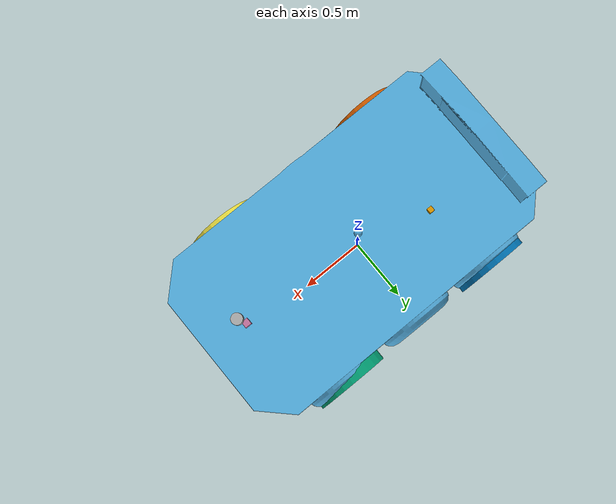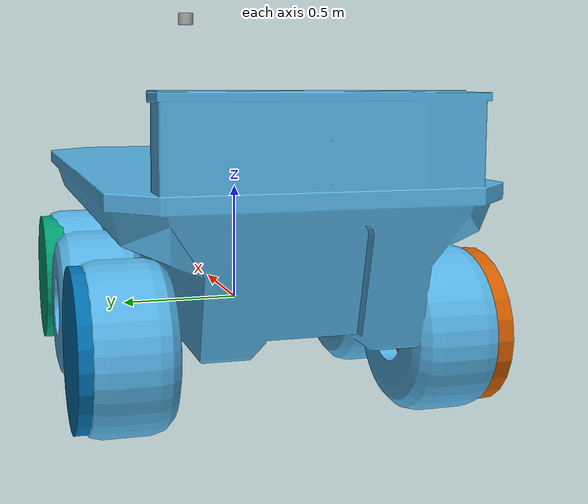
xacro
<?xml version="1.0"?>
<robot name="mutt_robot" xmlns:xacro="http://www.ros.org/wiki/xacro">

  <!--   PROPIEDADES BASE    -->
  <xacro:property name="base_width" value="1.6"/>
  <xacro:property name="base_length" value="1.3"/>
  <xacro:property name="base_height" value="2.6"/>
  <!-- Realmente son 600 kg, se cambia para pruebas-->
  <xacro:property name="base_mass" value="50"/>

  <!-- RUEDAS -->
  <xacro:property name="wheel_radius" value="0.30"/>
  <xacro:property name="wheel_width"  value="0.30"/>
  <xacro:property name="wheel_ygap"   value="0.50"/>
  <xacro:property name="wheel_zoff"   value="0.0"/>
  <xacro:property name="wheel_xoff"   value="0.70"/>

  <!-- SENSORES -->
  <xacro:property name="camera_x" value="1.00"/>
  <xacro:property name="camera_y" value="0.00"/>
  <xacro:property name="camera_z" value="0.75"/>

  <xacro:property name="lidar_x" value="1.0"/>
  <xacro:property name="lidar_y" value="0.00"/>
  <xacro:property name="lidar_z" value="1.30"/>

  <xacro:property name="imu_x" value="-0.50"/>
  <xacro:property name="imu_y" value="0.20"/>
  <xacro:property name="imu_z" value="0.70"/>

  <xacro:property name="gps_x" value="0.0"/>
  <xacro:property name="gps_y" value="0.0"/>
  <xacro:property name="gps_z" value="0.70"/>

  <!--     MACROS INERCIA    -->
  <xacro:macro name="box_inertia" params="m w h d">
    <inertial>
      <origin xyz="0 0 0" rpy="0 0 0"/>
      <mass value="${m}"/>
      <inertia ixx="${(m/12)*(h*h + d*d)}"
               iyy="${(m/12)*(w*w + d*d)}"
               izz="${(m/12)*(w*w + h*h)}"
               ixy="0" ixz="0" iyz="0"/>
    </inertial>
  </xacro:macro>

  <xacro:macro name="cylinder_inertia" params="m r h">
    <inertial>
      <origin xyz="0 0 0" rpy="0 0 0"/>
      <mass value="${m}"/>
      <inertia ixx="${(m/12)*(3*r*r + h*h)}"
               iyy="${(m/12)*(3*r*r + h*h)}"
               izz="${(m/2)*(r*r)}"
               ixy="0" ixz="0" iyz="0"/>
    </inertial>
  </xacro:macro>

  <!--    BASE FOOTPRINT     -->
  <link name="base_footprint"/>

  <!--       BODY LINK       -->
    <link name="base_link">
    <visual>
      <origin xyz="0 0 0" rpy="1.5708 0 1.5708"/>
      <geometry>
        <mesh filename="package://mutt_robot/models/mutt/meshes/mutt_full.stl" scale="1 1 1"/>
      </geometry>
    </visual>

    <collision>
        <geometry>
          <box size="${base_height} ${base_width} ${base_length}"/>
        </geometry>
        <origin xyz="0.0 0.0 0.5" rpy="0 0 0"/>
      </collision>

    <xacro:box_inertia m="${base_mass}" w="${base_width}" h="${base_height}" d="${base_length}"/>
  </link>

  <joint name="base_joint" type="fixed">
    <parent link="base_footprint"/>
    <child link="base_link"/>
    <origin xyz="0 0 0" rpy="0 0 0"/>
  </joint>

  <!--        RUEDAS         -->
  <xacro:macro name="wheel" params="prefix x_reflect y_reflect">
    <link name="${prefix}_link">
      <visual>
        <origin xyz="0 0 0" rpy="${pi/2} 0 0"/>
        <geometry>
          <cylinder radius="${wheel_radius}" length="${wheel_width}"/>
        </geometry>
      </visual>

      <collision>
        <origin xyz="0 0 0" rpy="${pi/2} 0 0"/>
        <geometry>
          <cylinder radius="${wheel_radius}" length="${wheel_width}"/>
        </geometry>
      </collision>

      <xacro:cylinder_inertia m="15.0" r="${wheel_radius}" h="${wheel_width}"/>
    </link>

    <joint name="${prefix}_joint" type="continuous">
      <parent link="base_link"/>
      <child  link="${prefix}_link"/>
      <origin xyz="${x_reflect*wheel_xoff} ${y_reflect*(base_width/2 + wheel_ygap)} ${-wheel_zoff}" rpy="0 0 0"/>
      <axis xyz="0 1 0"/>
      <limit effort="100" velocity="10"/>
      <dynamics damping="1.0" friction="1.0"/>
    </joint>
  </xacro:macro>

  <!-- Instanciar ruedas -->
  <xacro:wheel prefix="drivewhl_tl" x_reflect="1"  y_reflect="0.5"/>
  <xacro:wheel prefix="drivewhl_tr" x_reflect="1"  y_reflect="-0.5"/>
  <xacro:wheel prefix="drivewhl_bl" x_reflect="-1" y_reflect="0.5"/>
  <xacro:wheel prefix="drivewhl_br" x_reflect="-1" y_reflect="-0.5"/>

  <!--   SENSORES SEPARADOS  -->

  <!-- CAMERA MODULE -->
  <xacro:macro name="camera_module" params="x y z r p yaw parent">
    <link name="camera_link">
      <visual>
        <geometry><box size="0.05 0.05 0.05"/></geometry>
      </visual>
    </link>
    <joint name="camera_joint" type="fixed">
      <parent link="${parent}"/>
      <child  link="camera_link"/>
      <origin xyz="${x} ${y} ${z}" rpy="${r} ${p} ${yaw}"/>
    </joint>
  </xacro:macro>

  <!-- LIDAR MODULE -->
  <xacro:macro name="lidar_module" params="x y z r p yaw parent">
    <link name="lidar_link">
      <visual>
        <geometry><cylinder radius="0.04" length="0.06"/></geometry>
      </visual>
    </link>
    <joint name="lidar_joint" type="fixed">
      <parent link="${parent}"/>
      <child  link="lidar_link"/>
      <origin xyz="${x} ${y} ${z}" rpy="${r} ${p} ${yaw}"/>
    </joint>
  </xacro:macro>

  <!-- IMU MODULE -->
  <xacro:macro name="imu_module" params="x y z r p yaw parent">
    <link name="imu_link">
      <visual>
        <geometry><box size="0.04 0.04 0.04"/></geometry>
      </visual>
    </link>
    <joint name="imu_joint" type="fixed">
      <parent link="${parent}"/>
      <child  link="imu_link"/>
      <origin xyz="${x} ${y} ${z}" rpy="${r} ${p} ${yaw}"/>
    </joint>
  </xacro:macro>

  <!-- GPS MODULE -->
  <xacro:macro name="gps_module" params="x y z r p yaw parent">
    <link name="gps_link">
      <visual>
        <geometry><sphere radius="0.03"/></geometry>
      </visual>
    </link>
    <joint name="gps_joint" type="fixed">
      <parent link="${parent}"/>
      <child  link="gps_link"/>
      <origin xyz="${x} ${y} ${z}" rpy="${r} ${p} ${yaw}"/>
    </joint>
  </xacro:macro>

  <!-- Instantiate modules -->
  <xacro:camera_module x="${camera_x}" y="${camera_y}" z="${camera_z}" r="0" p="0" yaw="0" parent="base_link"/>
  <xacro:lidar_module  x="${lidar_x}"  y="${lidar_y}"  z="${lidar_z}"  r="0" p="0" yaw="0" parent="base_link"/>
  <xacro:imu_module    x="${imu_x}"    y="${imu_y}"    z="${imu_z}"    r="0" p="0" yaw="0" parent="base_link"/>
  <xacro:gps_module    x="${gps_x}"    y="${gps_y}"    z="${gps_z}"    r="0" p="0" yaw="0" parent="base_link"/>

  <!-- ARCHIVOS ADICIONALES -->
  <xacro:include filename="$(find mutt_robot)/models/mutt/robot.gazebo" />

</robot>
